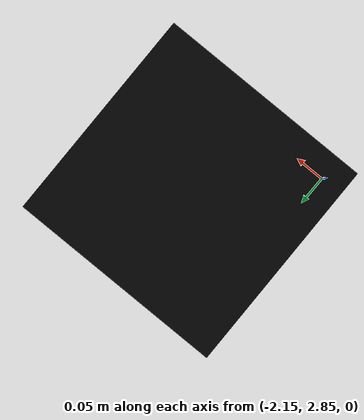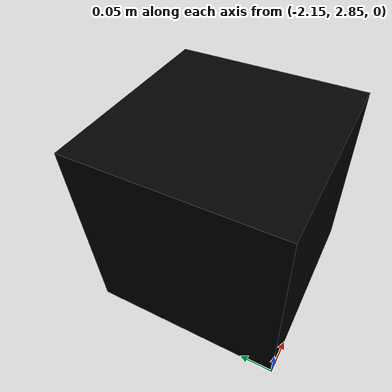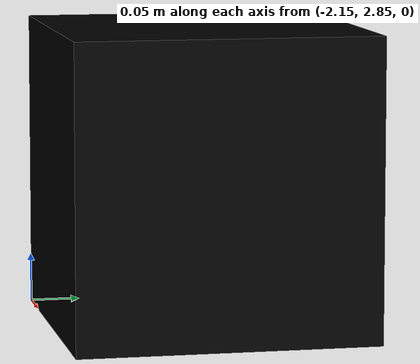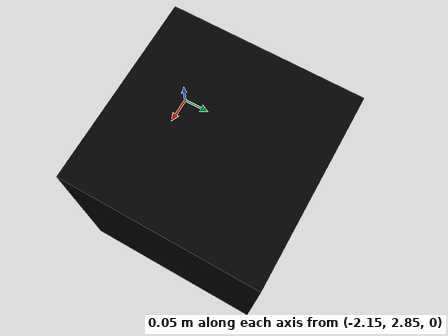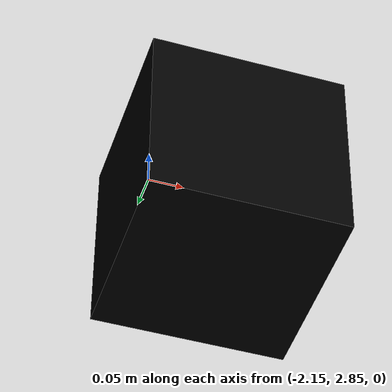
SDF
<?xml version='1.0'?>
<sdf version='1.4'>
  <model name="AruCo_Block_7">
    <static>true</static>
    <link name='chassis'>
            <pose>-2 3 0.15 0 0 0</pose>

            <collision name='collision'>
              <geometry>
                <box>
                  <size>.3 .3 .3</size>
                </box>
              </geometry>
            </collision>

            <visual name='visual_7'>
              <geometry>
                <box>
                  <size>.3 .3 .3</size>
                </box>
              </geometry>
              <material>
                <script>
                <uri>model://AruCo_Block_7/materials/scripts</uri>
                <uri>model://AruCo_Block_7/materials/textures</uri>
                <name>block7</name>
                </script>
                <ambient>0 0 0 1</ambient>
                <diffuse>0 0 0 1</diffuse>
                <specular>0 0 0 0</specular>
                <emissive>1 1 1 1</emissive>
              </material>
            </visual>
          </link>
  </model>
</sdf>
